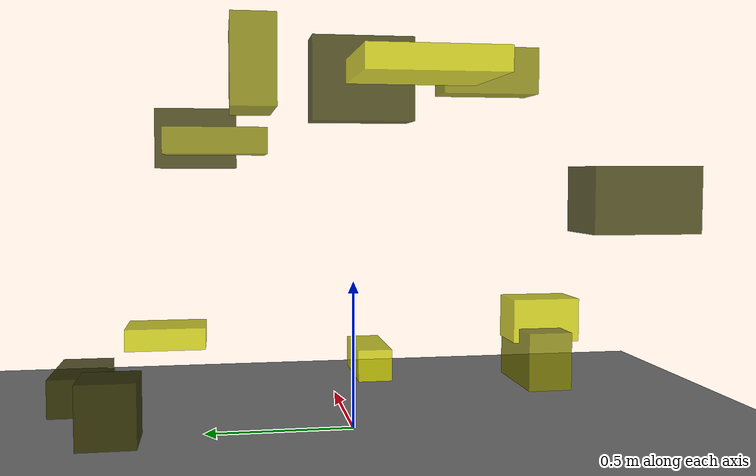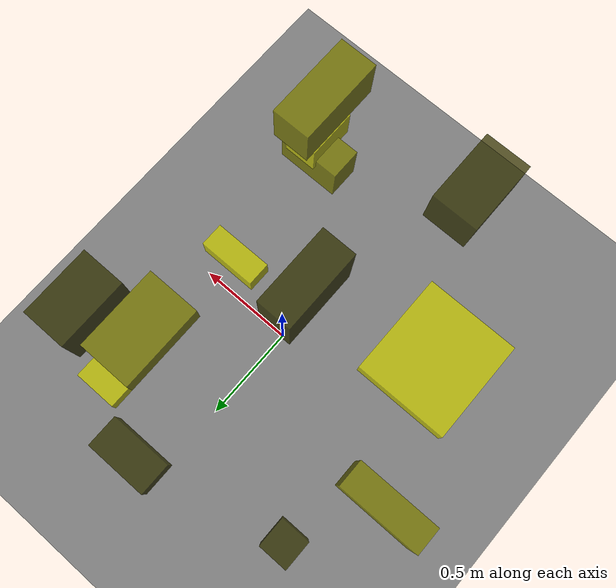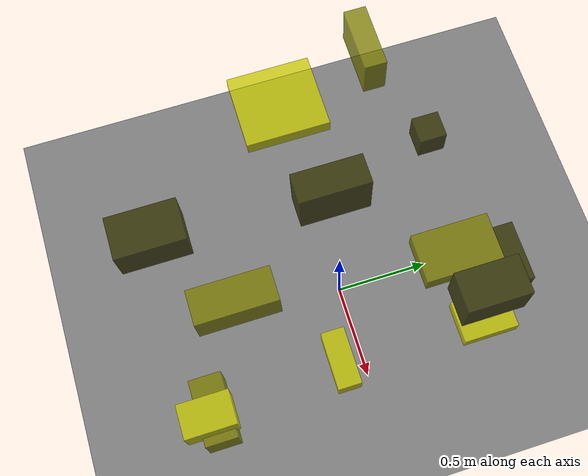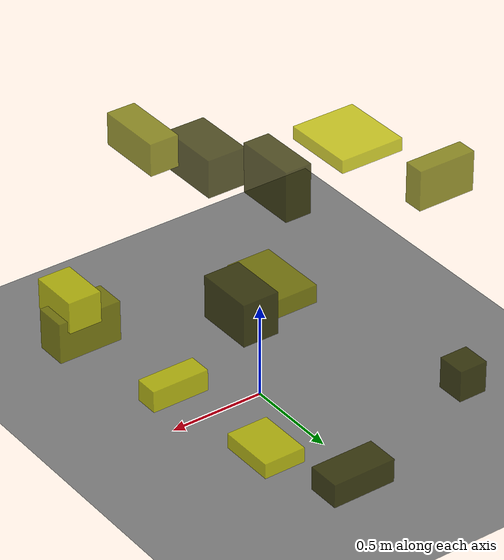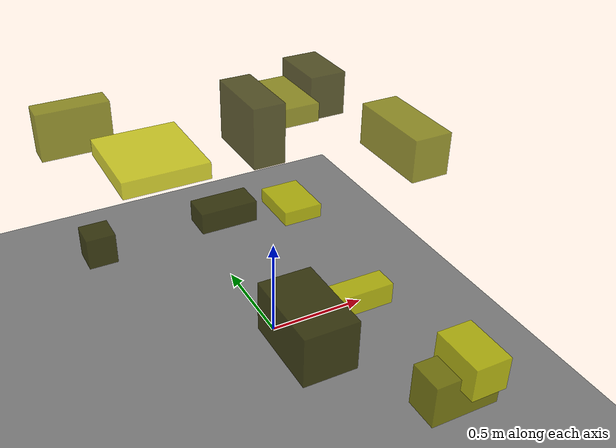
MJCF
<?xml version="1.0"?>
<mujoco model="obstacle_scene">
  <compiler angle="radian" coordinate="local"/>
  <option timestep="0.001" gravity="0 0 -9.81"/>

  <asset>
    <material name="obstacle_mat" rgba="0.8 0.8 0.0 0.8"/>
    <material name="ground_mat" rgba="0.5 0.5 0.5 1"/>
  </asset>

  <worldbody>
    <!-- Ground plane -->
    <geom name="ground" type="plane" size="3 3 0.1" material="ground_mat"/>

    <!-- Obstacles -->
    <body name="obstacle_0" pos="0.143197 0.911467 0.140776">
      <geom name="obs_0" type="box" size="0.168326 0.086722 0.062942" rgba="0.2 0.2 0.0 0.8"/>
    </body>
    <body name="obstacle_1" pos="0.267405 0.457806 0.981336">
      <geom name="obs_1" type="box" size="0.113502 0.180355 0.046448" rgba="0.5 0.5 0.0 0.8"/>
    </body>
    <body name="obstacle_2" pos="0.412799 -0.122337 0.153876">
      <geom name="obs_2" type="box" size="0.154547 0.062658 0.058227" rgba="0.8 0.8 0.0 0.8"/>
    </body>
    <body name="obstacle_3" pos="0.488824 0.529838 0.997668">
      <geom name="obs_3" type="box" size="0.092557 0.148738 0.109600" rgba="0.2 0.2 0.0 0.8"/>
    </body>
    <body name="obstacle_4" pos="-0.761627 0.362800 1.120065">
      <geom name="obs_4" type="box" size="0.155766 0.052814 0.106053" rgba="0.5 0.5 0.0 0.8"/>
    </body>
    <body name="obstacle_5" pos="0.437340 0.645525 0.259640">
      <geom name="obs_5" type="box" size="0.108883 0.145503 0.039721" rgba="0.8 0.8 0.0 0.8"/>
    </body>
    <body name="obstacle_6" pos="-0.301535 -0.853743 0.782829">
      <geom name="obs_6" type="box" size="0.108060 0.174073 0.104610" rgba="0.2 0.2 0.0 0.8"/>
    </body>
    <body name="obstacle_7" pos="0.272947 -0.543281 1.243579">
      <geom name="obs_7" type="box" size="0.076280 0.177126 0.084858" rgba="0.5 0.5 0.0 0.8"/>
    </body>
    <body name="obstacle_8" pos="-0.585532 -0.108660 1.155275">
      <geom name="obs_8" type="box" size="0.173657 0.191530 0.034377" rgba="0.8 0.8 0.0 0.8"/>
    </body>
    <body name="obstacle_9" pos="-0.104948 -0.009369 1.164728">
      <geom name="obs_9" type="box" size="0.069866 0.163223 0.133160" rgba="0.2 0.2 0.0 0.8"/>
    </body>
    <body name="obstacle_10" pos="0.471495 -0.820039 0.136054">
      <geom name="obs_10" type="box" size="0.174208 0.085474 0.112069" rgba="0.5 0.5 0.0 0.8"/>
    </body>
    <body name="obstacle_11" pos="0.510153 -0.848723 0.277442">
      <geom name="obs_11" type="box" size="0.089780 0.134902 0.086137" rgba="0.8 0.8 0.0 0.8"/>
    </body>
    <body name="obstacle_12" pos="-0.642682 0.725521 0.260581">
      <geom name="obs_12" type="box" size="0.075278 0.075712 0.084052" rgba="0.2 0.2 0.0 0.8"/>
    </body>
  </worldbody>
</mujoco>
